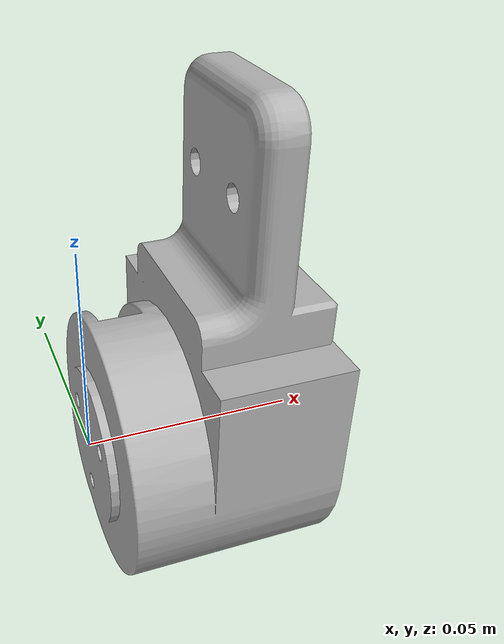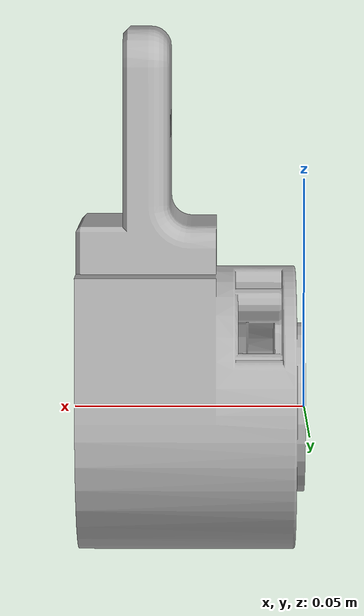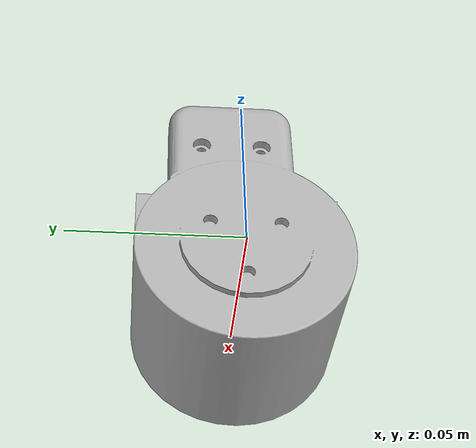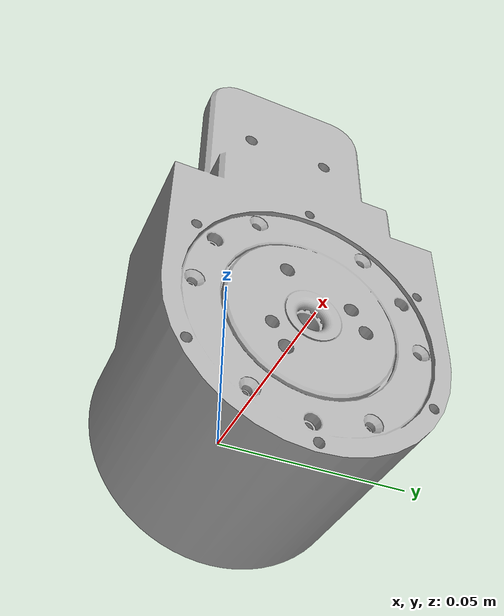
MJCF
<mujoco model="LINK6">
  <default>
    <default class="visual">
      <geom group="2" type="mesh" contype="0" conaffinity="0"/>
    </default>
    <default class="collision">
      <geom group="3" type="mesh"/>
    </default>
  </default>
  <asset>
    <material name="mtl_LINK6" specular="0.20000000000000004" shininess="1.0" rgba="0.69803922 0.69803922 0.69803922 1.0"/>
    <mesh file="LINK6.obj"/>
  </asset>
  <worldbody>
    <body name="LINK6">
      <geom material="mtl_LINK6" mesh="LINK6" class="visual"/>
      <geom mesh="LINK6" class="collision"/>
    </body>
  </worldbody>
</mujoco>
